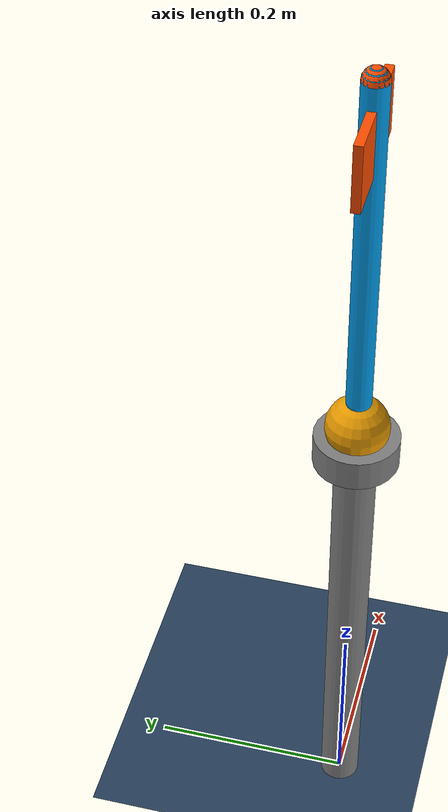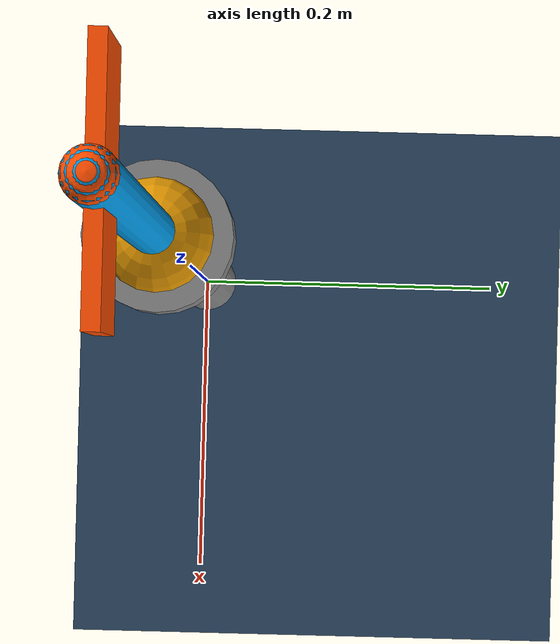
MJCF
<mujoco model="spherical_joint_position">
  <statistic center="0 0 0.1" extent="0.6" meansize=".05"/>

  <visual>
    <headlight diffuse="0.6 0.6 0.6" ambient="0.3 0.3 0.3" specular="0 0 0"/>
    <rgba haze="0.15 0.25 0.35 1"/>
    <global azimuth="-20" elevation="-20" ellipsoidinertia="true"/>
  </visual>

  <asset>
    <texture type="skybox" builtin="gradient" rgb1="0.3 0.5 0.7" rgb2="0 0 0" width="512" height="3072"/>
    <texture type="2d" name="groundplane" builtin="checker" mark="edge" rgb1="0.2 0.3 0.4" rgb2="0.1 0.2 0.3"
      markrgb="0.8 0.8 0.8" width="300" height="300"/>
    <material name="groundplane" texture="groundplane" texuniform="true" texrepeat="5 5" reflectance="0.2"/>
  </asset>

  <option gravity="0 0 -9.81" timestep="0.002"/>

  <default>
    <joint damping="0.01" armature="0.005"/>
    <geom contype="0" conaffinity="0"/>
  </default>

  <worldbody>
    <light pos="0 0 1.5" dir="0 0 -1" directional="true"/>
    <geom name="floor" size="0 0 0.05" type="plane" material="groundplane"/>

    <geom name="post" type="cylinder" fromto="0 0 0 0 0 0.46" size="0.02" rgba="0.5 0.5 0.5 1"/>
    <geom name="socket" type="cylinder" fromto="0 0 0.46 0 0 0.49" size="0.04" rgba="0.5 0.5 0.5 1"/>

    <body name="link" pos="0 0 0.5">
      <joint name="ball" type="ball" range="0 60" solreflimit="0.004 1"/>
      <geom name="ball" type="sphere" size="0.03" rgba="0.9 0.6 0 1" mass="0.05"/>
      <geom name="rod" type="capsule" fromto="0 0 0.03 0 0 0.35" size="0.012" rgba="0 0.6 0.9 1" mass="0.2"/>
      <geom name="flag" type="box" pos="0 0 0.3" size="0.06 0.004 0.03" rgba="1 0.3 0 1" mass="0.02"/>
      <site name="tip" pos="0 0 0.35" size="0.012" rgba="1 0.3 0 1"/>
    </body>
  </worldbody>

  <sensor>
    <ballquat name="ball_quat" joint="ball"/>
    <ballangvel name="ball_angvel" joint="ball"/>
    <framepos name="tip_pos" objtype="site" objname="tip"/>
  </sensor>

  <actuator>
    <position name="position_servo_x" joint="ball" gear="1 0 0" kp="5" kv="0.5" ctrlrange="-1.05 1.05"/>
    <position name="position_servo_y" joint="ball" gear="0 1 0" kp="5" kv="0.5" ctrlrange="-1.05 1.05"/>
    <position name="position_servo_z" joint="ball" gear="0 0 1" kp="5" kv="0.5" ctrlrange="-1.05 1.05"/>
  </actuator>
</mujoco>
